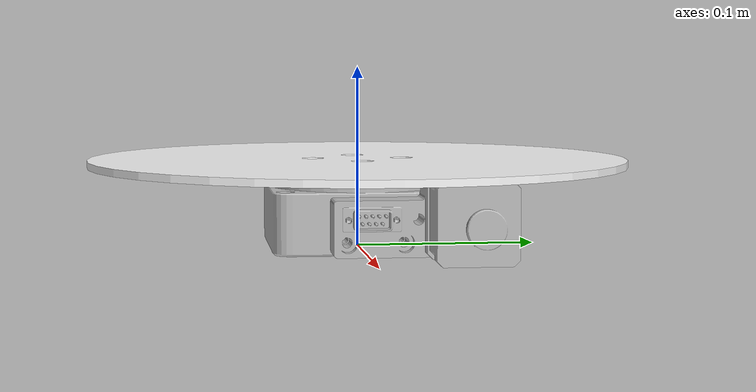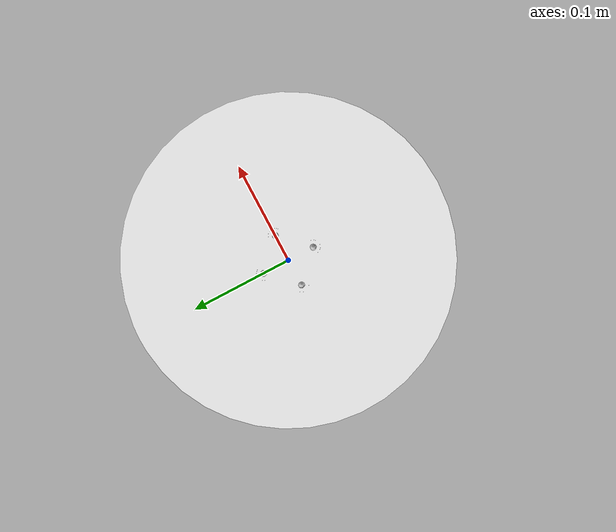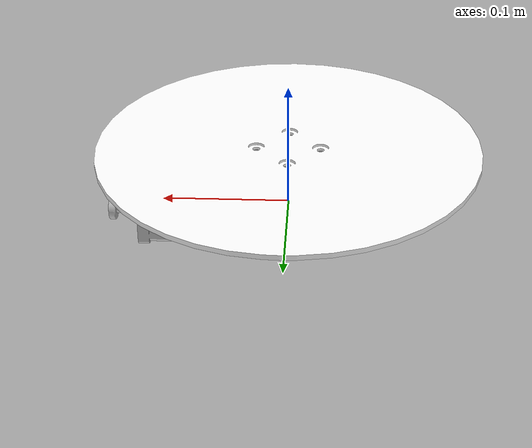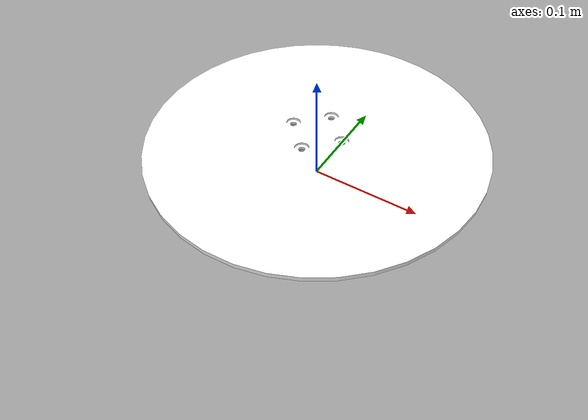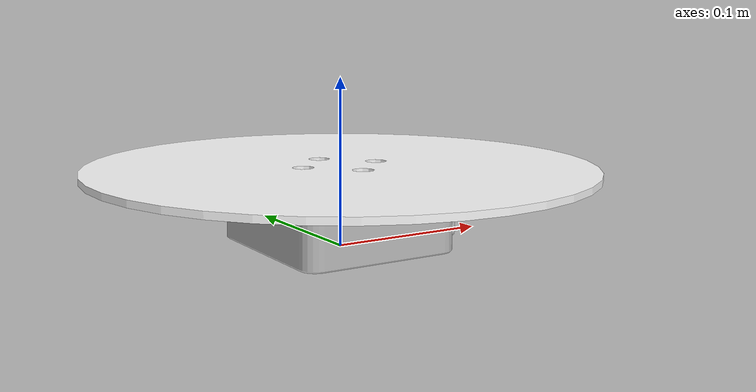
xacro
<?xml version="1.0"?>
<robot name="turntable" xmlns:xacro="http://ros.org/wiki/xacro">
    <xacro:include filename="$(find turntable_description)/urdf/turntable.urdf.xacro"/>
    <xacro:include filename="$(find turntable_description)/urdf/turntable_gazebo.xacro" />
    <link name="map"/>
    <xacro:turntable_gazebo />
    <xacro:turntable parent="map">
        <origin xyz="0 0 0" rpy="0 0 0"/>
    </xacro:turntable>
</robot>

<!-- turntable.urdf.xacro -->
<robot xmlns:xacro="http://ros.org/wiki/xacro">
  <xacro:include filename="$(find turntable_description)/urdf/turntable_transmission.xacro" />
  <xacro:macro name="turntable" params="parent *origin">
    <xacro:turntable_transmission />
    <joint name="turntable_base_joint" type="fixed">
        <parent link="${parent}"/>
        <child link="turntable_base_link"/>
        <xacro:insert_block name="origin"/>
    </joint>
    <link
      name="turntable_base_link">
      <inertial>
        <origin
          xyz="0.025941 0.017099 0.020883"
          rpy="0 0 0" />
        <mass
          value="0.47747" />
        <inertia
          ixx="0.00034258"
          ixy="7.1646E-06"
          ixz="2.4443E-06"
          iyy="0.00032297"
          iyz="5.1465E-06"
          izz="0.00058903" />
      </inertial>
      <visual>
        <origin
          xyz="0 0 0"
          rpy="0 0 0" />
        <geometry>
          <mesh
            filename="package://turntable_description/meshes/turntable_base_link.STL" />
        </geometry>
        <material
          name="">
          <color
            rgba="0.75294 0.75294 0.75294 1" />
        </material>
      </visual>
      <collision>
        <origin
          xyz="0 0 0"
          rpy="0 0 0" />
        <geometry>
          <mesh
            filename="package://turntable_description/meshes/turntable_base_link.STL" />
        </geometry>
      </collision>
    </link>
    <link
      name="turntable_support_link">
      <inertial>
        <origin
          xyz="0 -2.0817E-17 -0.002003"
          rpy="0 0 0" />
        <mass
          value="0.28146" />
        <inertia
          ixx="0.0015904"
          ixy="1.3056E-22"
          ixz="5.1773E-24"
          iyy="0.0015904"
          iyz="5.1068E-23"
          izz="0.00318" />
      </inertial>
      <visual>
        <origin
          xyz="0 0 0"
          rpy="0 0 0" />
        <geometry>
          <mesh
            filename="package://turntable_description/meshes/turntable_support_link.STL" />
        </geometry>
        <material
          name="">
          <color
            rgba="1 1 1 1" />
        </material>
      </visual>
      <collision>
        <origin
          xyz="0 0 0"
          rpy="0 0 0" />
        <geometry>
          <mesh
            filename="package://turntable_description/meshes/turntable_support_link.STL" />
        </geometry>
      </collision>
    </link>
    <joint
      name="turntable_support_joint"
      type="revolute">
      <origin
        xyz="0 0 0.049"
        rpy="0 0 0" />
      <parent
        link="turntable_base_link" />
      <child
        link="turntable_support_link" />
      <axis
        xyz="0 0 1" />
      <limit
        lower="-3.1415926"
        upper="3.1415926"
        effort="10"
        velocity="10" />
    </joint>
  </xacro:macro>
</robot>
